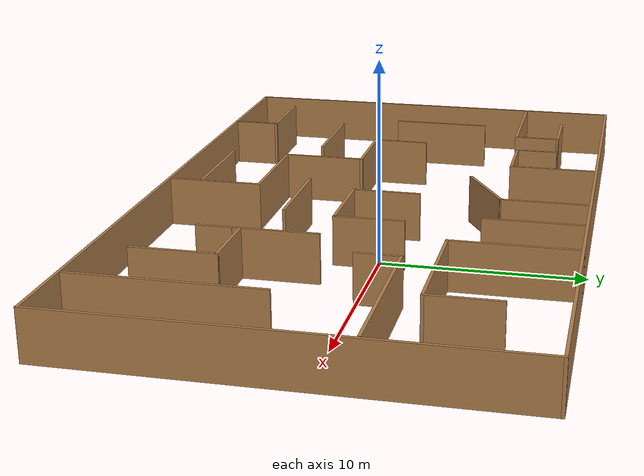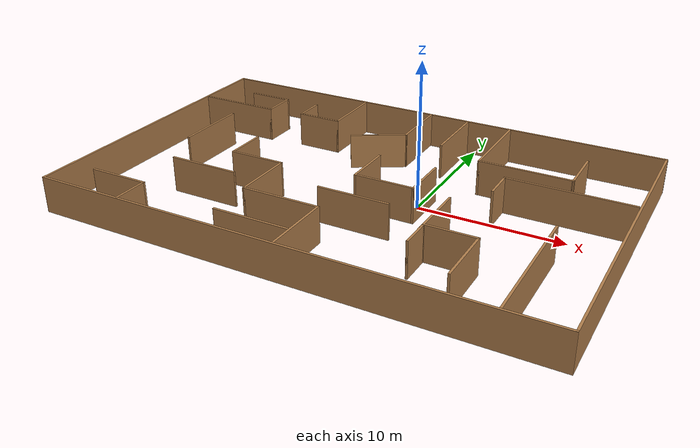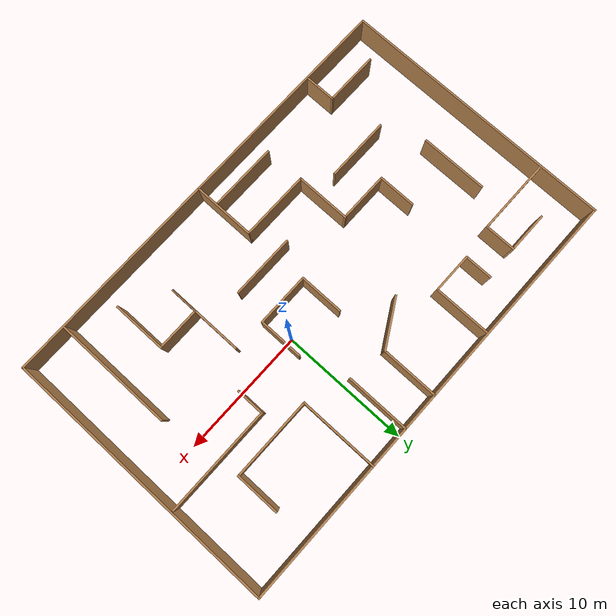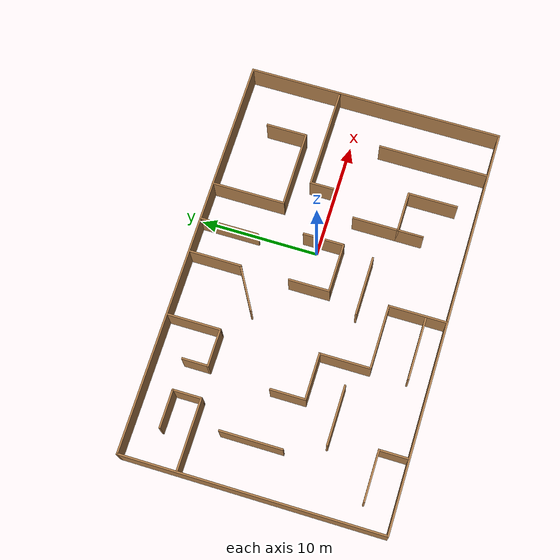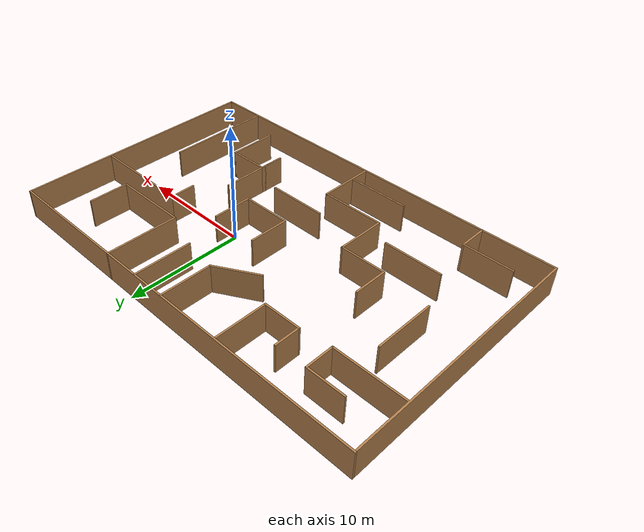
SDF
<?xml version='1.0'?>
<sdf version='1.7'>
  <model name='custom_maze'>
    <pose>-3.5651 -1.01333 0 0 -0 0</pose>
    <link name='Wall_16'>
      <collision name='Wall_16_Collision'>
        <geometry>
          <box>
            <size>21.75 0.15 2.5</size>
          </box>
        </geometry>
        <pose>0 0 1.25 0 -0 0</pose>
      </collision>
      <visual name='Wall_16_Visual'>
        <pose>0 0 1.25 0 -0 0</pose>
        <geometry>
          <box>
            <size>21.75 0.15 2.5</size>
          </box>
        </geometry>
        <material>
          <script>
            <uri>file://media/materials/scripts/gazebo.material</uri>
            <name>Gazebo/Wood</name>
          </script>
          <ambient>1 1 1 1</ambient>
        </material>
        <meta>
          <layer>0</layer>
        </meta>
      </visual>
      <pose>-17.175 -0.000588 0 0 -0 -1.5708</pose>
    </link>
    <link name='Wall_17'>
      <collision name='Wall_17_Collision'>
        <geometry>
          <box>
            <size>34.5 0.15 2.5</size>
          </box>
        </geometry>
        <pose>0 0 1.25 0 -0 0</pose>
      </collision>
      <visual name='Wall_17_Visual'>
        <pose>0 0 1.25 0 -0 0</pose>
        <geometry>
          <box>
            <size>34.5 0.15 2.5</size>
          </box>
        </geometry>
        <material>
          <script>
            <uri>file://media/materials/scripts/gazebo.material</uri>
            <name>Gazebo/Wood</name>
          </script>
          <ambient>1 1 1 1</ambient>
        </material>
        <meta>
          <layer>0</layer>
        </meta>
      </visual>
      <pose>-0 -10.8006 0 0 -0 0</pose>
    </link>
    <link name='Wall_18'>
      <collision name='Wall_18_Collision'>
        <geometry>
          <box>
            <size>21.75 0.15 2.5</size>
          </box>
        </geometry>
        <pose>0 0 1.25 0 -0 0</pose>
      </collision>
      <visual name='Wall_18_Visual'>
        <pose>0 0 1.25 0 -0 0</pose>
        <geometry>
          <box>
            <size>21.75 0.15 2.5</size>
          </box>
        </geometry>
        <material>
          <script>
            <uri>file://media/materials/scripts/gazebo.material</uri>
            <name>Gazebo/Wood</name>
          </script>
          <ambient>1 1 1 1</ambient>
        </material>
        <meta>
          <layer>0</layer>
        </meta>
      </visual>
      <pose>17.175 -0.000588 0 0 -0 1.5708</pose>
    </link>
    <link name='Wall_19'>
      <collision name='Wall_19_Collision'>
        <geometry>
          <box>
            <size>34.5 0.15 2.5</size>
          </box>
        </geometry>
        <pose>0 0 1.25 0 -0 0</pose>
      </collision>
      <visual name='Wall_19_Visual'>
        <pose>0 0 1.25 0 -0 0</pose>
        <geometry>
          <box>
            <size>34.5 0.15 2.5</size>
          </box>
        </geometry>
        <material>
          <script>
            <uri>file://media/materials/scripts/gazebo.material</uri>
            <name>Gazebo/Wood</name>
          </script>
          <ambient>1 1 1 1</ambient>
        </material>
        <meta>
          <layer>0</layer>
        </meta>
      </visual>
      <pose>-0 10.7994 0 0 -0 3.14159</pose>
    </link>
    <link name='Wall_21'>
      <collision name='Wall_21_Collision'>
        <geometry>
          <box>
            <size>6 0.15 2.5</size>
          </box>
        </geometry>
        <pose>0 0 1.25 0 -0 0</pose>
      </collision>
      <visual name='Wall_21_Visual'>
        <pose>0 0 1.25 0 -0 0</pose>
        <geometry>
          <box>
            <size>6 0.15 2.5</size>
          </box>
        </geometry>
        <material>
          <script>
            <uri>file://media/materials/scripts/gazebo.material</uri>
            <name>Gazebo/Wood</name>
          </script>
          <ambient>1 1 1 1</ambient>
        </material>
        <meta>
          <layer>0</layer>
        </meta>
      </visual>
      <pose>-14.1201 5.98637 0 0 -0 0</pose>
    </link>
    <link name='Wall_22'>
      <collision name='Wall_22_Collision'>
        <geometry>
          <box>
            <size>2.5 0.15 2.5</size>
          </box>
        </geometry>
        <pose>0 0 1.25 0 -0 0</pose>
      </collision>
      <visual name='Wall_22_Visual'>
        <pose>0 0 1.25 0 -0 0</pose>
        <geometry>
          <box>
            <size>2.5 0.15 2.5</size>
          </box>
        </geometry>
        <material>
          <script>
            <uri>file://media/materials/scripts/gazebo.material</uri>
            <name>Gazebo/Wood</name>
          </script>
          <ambient>1 1 1 1</ambient>
        </material>
        <meta>
          <layer>0</layer>
        </meta>
      </visual>
      <pose>-11.1951 7.16137 0 0 -0 1.5708</pose>
    </link>
    <link name='Wall_23'>
      <collision name='Wall_23_Collision'>
        <geometry>
          <box>
            <size>3.25 0.15 2.5</size>
          </box>
        </geometry>
        <pose>0 0 1.25 0 -0 0</pose>
      </collision>
      <visual name='Wall_23_Visual'>
        <pose>0 0 1.25 0 -0 0</pose>
        <geometry>
          <box>
            <size>3.25 0.15 2.5</size>
          </box>
        </geometry>
        <material>
          <script>
            <uri>file://media/materials/scripts/gazebo.material</uri>
            <name>Gazebo/Wood</name>
          </script>
          <ambient>1 1 1 1</ambient>
        </material>
        <meta>
          <layer>0</layer>
        </meta>
      </visual>
      <pose>-12.7451 8.33638 0 0 -0 3.14159</pose>
    </link>
    <link name='Wall_25'>
      <collision name='Wall_25_Collision'>
        <geometry>
          <box>
            <size>2.25 0.15 2.5</size>
          </box>
        </geometry>
        <pose>0 0 1.25 0 -0 0</pose>
      </collision>
      <visual name='Wall_25_Visual'>
        <pose>0 0 1.25 0 -0 0</pose>
        <geometry>
          <box>
            <size>2.25 0.15 2.5</size>
          </box>
        </geometry>
        <material>
          <script>
            <uri>file://media/materials/scripts/gazebo.material</uri>
            <name>Gazebo/Wood</name>
          </script>
          <ambient>1 1 1 1</ambient>
        </material>
        <meta>
          <layer>0</layer>
        </meta>
      </visual>
      <pose>-8.58987 7.36371 0 0 -0 -1.5708</pose>
    </link>
    <link name='Wall_26'>
      <collision name='Wall_26_Collision'>
        <geometry>
          <box>
            <size>3.25 0.15 2.5</size>
          </box>
        </geometry>
        <pose>0 0 1.25 0 -0 0</pose>
      </collision>
      <visual name='Wall_26_Visual'>
        <pose>0 0 1.25 0 -0 0</pose>
        <geometry>
          <box>
            <size>3.25 0.15 2.5</size>
          </box>
        </geometry>
        <material>
          <script>
            <uri>file://media/materials/scripts/gazebo.material</uri>
            <name>Gazebo/Wood</name>
          </script>
          <ambient>1 1 1 1</ambient>
        </material>
        <meta>
          <layer>0</layer>
        </meta>
      </visual>
      <pose>-7.03988 6.31371 0 0 -0 0</pose>
    </link>
    <link name='Wall_27'>
      <collision name='Wall_27_Collision'>
        <geometry>
          <box>
            <size>4.5 0.15 2.5</size>
          </box>
        </geometry>
        <pose>0 0 1.25 0 -0 0</pose>
      </collision>
      <visual name='Wall_27_Visual'>
        <pose>0 0 1.25 0 -0 0</pose>
        <geometry>
          <box>
            <size>4.5 0.15 2.5</size>
          </box>
        </geometry>
        <material>
          <script>
            <uri>file://media/materials/scripts/gazebo.material</uri>
            <name>Gazebo/Wood</name>
          </script>
          <ambient>1 1 1 1</ambient>
        </material>
        <meta>
          <layer>0</layer>
        </meta>
      </visual>
      <pose>-5.48987 8.48871 0 0 -0 1.5708</pose>
    </link>
    <link name='Wall_29'>
      <collision name='Wall_29_Collision'>
        <geometry>
          <box>
            <size>4.5 0.15 2.5</size>
          </box>
        </geometry>
        <pose>0 0 1.25 0 -0 0</pose>
      </collision>
      <visual name='Wall_29_Visual'>
        <pose>0 0 1.25 0 -0 0</pose>
        <geometry>
          <box>
            <size>4.5 0.15 2.5</size>
          </box>
        </geometry>
        <material>
          <script>
            <uri>file://media/materials/scripts/gazebo.material</uri>
            <name>Gazebo/Wood</name>
          </script>
          <ambient>1 1 1 1</ambient>
        </material>
        <meta>
          <layer>0</layer>
        </meta>
      </visual>
      <pose>0.067619 8.58513 0 0 -0 -1.5708</pose>
    </link>
    <link name='Wall_30'>
      <collision name='Wall_30_Collision'>
        <geometry>
          <box>
            <size>4 0.15 2.5</size>
          </box>
        </geometry>
        <pose>0 0 1.25 0 -0 0</pose>
      </collision>
      <visual name='Wall_30_Visual'>
        <pose>0 0 1.25 0 -0 0</pose>
        <geometry>
          <box>
            <size>4 0.15 2.5</size>
          </box>
        </geometry>
        <material>
          <script>
            <uri>file://media/materials/scripts/gazebo.material</uri>
            <name>Gazebo/Wood</name>
          </script>
          <ambient>1 1 1 1</ambient>
        </material>
        <meta>
          <layer>0</layer>
        </meta>
      </visual>
      <pose>-1.59948 5.44763 0 0 -0 -2.61799</pose>
    </link>
    <link name='Wall_33'>
      <collision name='Wall_33_Collision'>
        <geometry>
          <box>
            <size>5.25 0.15 2.5</size>
          </box>
        </geometry>
        <pose>0 0 1.25 0 -0 0</pose>
      </collision>
      <visual name='Wall_33_Visual'>
        <pose>0 0 1.25 0 -0 0</pose>
        <geometry>
          <box>
            <size>5.25 0.15 2.5</size>
          </box>
        </geometry>
        <material>
          <script>
            <uri>file://media/materials/scripts/gazebo.material</uri>
            <name>Gazebo/Wood</name>
          </script>
          <ambient>1 1 1 1</ambient>
        </material>
        <meta>
          <layer>0</layer>
        </meta>
      </visual>
      <pose>-13.2018 1.29483 0 0 -0 1.5708</pose>
    </link>
    <link name='Wall_36'>
      <collision name='Wall_36_Collision'>
        <geometry>
          <box>
            <size>2.5 0.15 2.5</size>
          </box>
        </geometry>
        <pose>0 0 1.25 0 -0 0</pose>
      </collision>
      <visual name='Wall_36_Visual'>
        <pose>0 0 1.25 0 -0 0</pose>
        <geometry>
          <box>
            <size>2.5 0.15 2.5</size>
          </box>
        </geometry>
        <material>
          <script>
            <uri>file://media/materials/scripts/gazebo.material</uri>
            <name>Gazebo/Wood</name>
          </script>
          <ambient>1 1 1 1</ambient>
        </material>
        <meta>
          <layer>0</layer>
        </meta>
      </visual>
      <pose>-11.0981 -9.54678 0 0 -0 1.5708</pose>
    </link>
    <link name='Wall_37'>
      <collision name='Wall_37_Collision'>
        <geometry>
          <box>
            <size>4.25 0.15 2.5</size>
          </box>
        </geometry>
        <pose>0 0 1.25 0 -0 0</pose>
      </collision>
      <visual name='Wall_37_Visual'>
        <pose>0 0 1.25 0 -0 0</pose>
        <geometry>
          <box>
            <size>4.25 0.15 2.5</size>
          </box>
        </geometry>
        <material>
          <script>
            <uri>file://media/materials/scripts/gazebo.material</uri>
            <name>Gazebo/Wood</name>
          </script>
          <ambient>1 1 1 1</ambient>
        </material>
        <meta>
          <layer>0</layer>
        </meta>
      </visual>
      <pose>-13.1481 -8.37178 0 0 -0 3.14159</pose>
    </link>
    <link name='Wall_39'>
      <collision name='Wall_39_Collision'>
        <geometry>
          <box>
            <size>5 0.15 2.5</size>
          </box>
        </geometry>
        <pose>0 0 1.25 0 -0 0</pose>
      </collision>
      <visual name='Wall_39_Visual'>
        <pose>0 0 1.25 0 -0 0</pose>
        <geometry>
          <box>
            <size>5 0.15 2.5</size>
          </box>
        </geometry>
        <material>
          <script>
            <uri>file://media/materials/scripts/gazebo.material</uri>
            <name>Gazebo/Wood</name>
          </script>
          <ambient>1 1 1 1</ambient>
        </material>
        <meta>
          <layer>0</layer>
        </meta>
      </visual>
      <pose>-9.44178 -4.45116 0 0 -0 0</pose>
    </link>
    <link name='Wall_44'>
      <collision name='Wall_44_Collision'>
        <geometry>
          <box>
            <size>3 0.15 2.5</size>
          </box>
        </geometry>
        <pose>0 0 1.25 0 -0 0</pose>
      </collision>
      <visual name='Wall_44_Visual'>
        <pose>0 0 1.25 0 -0 0</pose>
        <geometry>
          <box>
            <size>3 0.15 2.5</size>
          </box>
        </geometry>
        <material>
          <script>
            <uri>file://media/materials/scripts/gazebo.material</uri>
            <name>Gazebo/Wood</name>
          </script>
          <ambient>1 1 1 1</ambient>
        </material>
        <meta>
          <layer>0</layer>
        </meta>
      </visual>
      <pose>-8.95397 -0.374206 0 0 -0 -1.5708</pose>
    </link>
    <link name='Wall_45'>
      <collision name='Wall_45_Collision'>
        <geometry>
          <box>
            <size>4 0.15 2.5</size>
          </box>
        </geometry>
        <pose>0 0 1.25 0 -0 0</pose>
      </collision>
      <visual name='Wall_45_Visual'>
        <pose>0 0 1.25 0 -0 0</pose>
        <geometry>
          <box>
            <size>4 0.15 2.5</size>
          </box>
        </geometry>
        <material>
          <script>
            <uri>file://media/materials/scripts/gazebo.material</uri>
            <name>Gazebo/Wood</name>
          </script>
          <ambient>1 1 1 1</ambient>
        </material>
        <meta>
          <layer>0</layer>
        </meta>
      </visual>
      <pose>-7.02897 -1.79921 0 0 -0 0</pose>
    </link>
    <link name='Wall_46'>
      <collision name='Wall_46_Collision'>
        <geometry>
          <box>
            <size>4.32702 0.15 2.5</size>
          </box>
        </geometry>
        <pose>0 0 1.25 0 -0 0</pose>
      </collision>
      <visual name='Wall_46_Visual'>
        <pose>0 0 1.25 0 -0 0</pose>
        <geometry>
          <box>
            <size>4.32702 0.15 2.5</size>
          </box>
        </geometry>
        <material>
          <script>
            <uri>file://media/materials/scripts/gazebo.material</uri>
            <name>Gazebo/Wood</name>
          </script>
          <ambient>1 1 1 1</ambient>
        </material>
        <meta>
          <layer>0</layer>
        </meta>
      </visual>
      <pose>-5.10398 -3.88771 0 0 -0 -1.5708</pose>
    </link>
    <link name='Wall_48'>
      <collision name='Wall_48_Collision'>
        <geometry>
          <box>
            <size>5.5 0.15 2.5</size>
          </box>
        </geometry>
        <pose>0 0 1.25 0 -0 0</pose>
      </collision>
      <visual name='Wall_48_Visual'>
        <pose>0 0 1.25 0 -0 0</pose>
        <geometry>
          <box>
            <size>5.5 0.15 2.5</size>
          </box>
        </geometry>
        <material>
          <script>
            <uri>file://media/materials/scripts/gazebo.material</uri>
            <name>Gazebo/Wood</name>
          </script>
          <ambient>1 1 1 1</ambient>
        </material>
        <meta>
          <layer>0</layer>
        </meta>
      </visual>
      <pose>-2.42897 -5.97622 0 0 -0 0</pose>
    </link>
    <link name='Wall_49'>
      <collision name='Wall_49_Collision'>
        <geometry>
          <box>
            <size>4.92298 0.15 2.5</size>
          </box>
        </geometry>
        <pose>0 0 1.25 0 -0 0</pose>
      </collision>
      <visual name='Wall_49_Visual'>
        <pose>0 0 1.25 0 -0 0</pose>
        <geometry>
          <box>
            <size>4.92298 0.15 2.5</size>
          </box>
        </geometry>
        <material>
          <script>
            <uri>file://media/materials/scripts/gazebo.material</uri>
            <name>Gazebo/Wood</name>
          </script>
          <ambient>1 1 1 1</ambient>
        </material>
        <meta>
          <layer>0</layer>
        </meta>
      </visual>
      <pose>0.246025 -8.36271 0 0 -0 -1.5708</pose>
    </link>
    <link name='Wall_51'>
      <collision name='Wall_51_Collision'>
        <geometry>
          <box>
            <size>5.25 0.15 2.5</size>
          </box>
        </geometry>
        <pose>0 0 1.25 0 -0 0</pose>
      </collision>
      <visual name='Wall_51_Visual'>
        <pose>0 0 1.25 0 -0 0</pose>
        <geometry>
          <box>
            <size>5.25 0.15 2.5</size>
          </box>
        </geometry>
        <material>
          <script>
            <uri>file://media/materials/scripts/gazebo.material</uri>
            <name>Gazebo/Wood</name>
          </script>
          <ambient>1 1 1 1</ambient>
        </material>
        <meta>
          <layer>0</layer>
        </meta>
      </visual>
      <pose>-2.47978 -9.0631 0 0 -0 0</pose>
    </link>
    <link name='Wall_53'>
      <collision name='Wall_53_Collision'>
        <geometry>
          <box>
            <size>6 0.15 2.5</size>
          </box>
        </geometry>
        <pose>0 0 1.25 0 -0 0</pose>
      </collision>
      <visual name='Wall_53_Visual'>
        <pose>0 0 1.25 0 -0 0</pose>
        <geometry>
          <box>
            <size>6 0.15 2.5</size>
          </box>
        </geometry>
        <material>
          <script>
            <uri>file://media/materials/scripts/gazebo.material</uri>
            <name>Gazebo/Wood</name>
          </script>
          <ambient>1 1 1 1</ambient>
        </material>
        <meta>
          <layer>0</layer>
        </meta>
      </visual>
      <pose>6.66188 -4.09926 0 0 -0 -1.5708</pose>
    </link>
    <link name='Wall_54'>
      <collision name='Wall_54_Collision'>
        <geometry>
          <box>
            <size>2.25 0.15 2.5</size>
          </box>
        </geometry>
        <pose>0 0 1.25 0 -0 0</pose>
      </collision>
      <visual name='Wall_54_Visual'>
        <pose>0 0 1.25 0 -0 0</pose>
        <geometry>
          <box>
            <size>2.25 0.15 2.5</size>
          </box>
        </geometry>
        <material>
          <script>
            <uri>file://media/materials/scripts/gazebo.material</uri>
            <name>Gazebo/Wood</name>
          </script>
          <ambient>1 1 1 1</ambient>
        </material>
        <meta>
          <layer>0</layer>
        </meta>
      </visual>
      <pose>6.66188 -5.97426 0 0 -0 1.5708</pose>
    </link>
    <link name='Wall_55'>
      <collision name='Wall_55_Collision'>
        <geometry>
          <box>
            <size>3.5 0.15 2.5</size>
          </box>
        </geometry>
        <pose>0 0 1.25 0 -0 0</pose>
      </collision>
      <visual name='Wall_55_Visual'>
        <pose>0 0 1.25 0 -0 0</pose>
        <geometry>
          <box>
            <size>3.5 0.15 2.5</size>
          </box>
        </geometry>
        <material>
          <script>
            <uri>file://media/materials/scripts/gazebo.material</uri>
            <name>Gazebo/Wood</name>
          </script>
          <ambient>1 1 1 1</ambient>
        </material>
        <meta>
          <layer>0</layer>
        </meta>
      </visual>
      <pose>8.33688 -4.92426 0 0 -0 0</pose>
    </link>
    <link name='Wall_56'>
      <collision name='Wall_56_Collision'>
        <geometry>
          <box>
            <size>4.25 0.15 2.5</size>
          </box>
        </geometry>
        <pose>0 0 1.25 0 -0 0</pose>
      </collision>
      <visual name='Wall_56_Visual'>
        <pose>0 0 1.25 0 -0 0</pose>
        <geometry>
          <box>
            <size>4.25 0.15 2.5</size>
          </box>
        </geometry>
        <material>
          <script>
            <uri>file://media/materials/scripts/gazebo.material</uri>
            <name>Gazebo/Wood</name>
          </script>
          <ambient>1 1 1 1</ambient>
        </material>
        <meta>
          <layer>0</layer>
        </meta>
      </visual>
      <pose>10.0119 -6.97426 0 0 -0 -1.5708</pose>
    </link>
    <link name='Wall_58'>
      <collision name='Wall_58_Collision'>
        <geometry>
          <box>
            <size>9.25 0.15 2.5</size>
          </box>
        </geometry>
        <pose>0 0 1.25 0 -0 0</pose>
      </collision>
      <visual name='Wall_58_Visual'>
        <pose>0 0 1.25 0 -0 0</pose>
        <geometry>
          <box>
            <size>9.25 0.15 2.5</size>
          </box>
        </geometry>
        <material>
          <script>
            <uri>file://media/materials/scripts/gazebo.material</uri>
            <name>Gazebo/Wood</name>
          </script>
          <ambient>1 1 1 1</ambient>
        </material>
        <meta>
          <layer>0</layer>
        </meta>
      </visual>
      <pose>13.418 -6.09087 0 0 -0 1.5708</pose>
    </link>
    <link name='Wall_60'>
      <collision name='Wall_60_Collision'>
        <geometry>
          <box>
            <size>5 0.15 2.5</size>
          </box>
        </geometry>
        <pose>0 0 1.25 0 -0 0</pose>
      </collision>
      <visual name='Wall_60_Visual'>
        <pose>0 0 1.25 0 -0 0</pose>
        <geometry>
          <box>
            <size>5 0.15 2.5</size>
          </box>
        </geometry>
        <material>
          <script>
            <uri>file://media/materials/scripts/gazebo.material</uri>
            <name>Gazebo/Wood</name>
          </script>
          <ambient>1 1 1 1</ambient>
        </material>
        <meta>
          <layer>0</layer>
        </meta>
      </visual>
      <pose>1.31941 -3.64205 0 0 -0 0</pose>
    </link>
    <link name='Wall_62'>
      <collision name='Wall_62_Collision'>
        <geometry>
          <box>
            <size>6.25 0.15 2.5</size>
          </box>
        </geometry>
        <pose>0 0 1.25 0 -0 0</pose>
      </collision>
      <visual name='Wall_62_Visual'>
        <pose>0 0 1.25 0 -0 0</pose>
        <geometry>
          <box>
            <size>6.25 0.15 2.5</size>
          </box>
        </geometry>
        <material>
          <script>
            <uri>file://media/materials/scripts/gazebo.material</uri>
            <name>Gazebo/Wood</name>
          </script>
          <ambient>1 1 1 1</ambient>
        </material>
        <meta>
          <layer>0</layer>
        </meta>
      </visual>
      <pose>6.25732 7.75059 0 0 -0 -1.5708</pose>
    </link>
    <link name='Wall_63'>
      <collision name='Wall_63_Collision'>
        <geometry>
          <box>
            <size>6.5 0.15 2.5</size>
          </box>
        </geometry>
        <pose>0 0 1.25 0 -0 0</pose>
      </collision>
      <visual name='Wall_63_Visual'>
        <pose>0 0 1.25 0 -0 0</pose>
        <geometry>
          <box>
            <size>6.5 0.15 2.5</size>
          </box>
        </geometry>
        <material>
          <script>
            <uri>file://media/materials/scripts/gazebo.material</uri>
            <name>Gazebo/Wood</name>
          </script>
          <ambient>1 1 1 1</ambient>
        </material>
        <meta>
          <layer>0</layer>
        </meta>
      </visual>
      <pose>9.43232 4.70059 0 0 -0 0</pose>
    </link>
    <link name='Wall_64'>
      <collision name='Wall_64_Collision'>
        <geometry>
          <box>
            <size>3.5 0.15 2.5</size>
          </box>
        </geometry>
        <pose>0 0 1.25 0 -0 0</pose>
      </collision>
      <visual name='Wall_64_Visual'>
        <pose>0 0 1.25 0 -0 0</pose>
        <geometry>
          <box>
            <size>3.5 0.15 2.5</size>
          </box>
        </geometry>
        <material>
          <script>
            <uri>file://media/materials/scripts/gazebo.material</uri>
            <name>Gazebo/Wood</name>
          </script>
          <ambient>1 1 1 1</ambient>
        </material>
        <meta>
          <layer>0</layer>
        </meta>
      </visual>
      <pose>12.6073 6.37559 0 0 -0 1.5708</pose>
    </link>
    <link name='Wall_66'>
      <collision name='Wall_66_Collision'>
        <geometry>
          <box>
            <size>5 0.15 2.5</size>
          </box>
        </geometry>
        <pose>0 0 1.25 0 -0 0</pose>
      </collision>
      <visual name='Wall_66_Visual'>
        <pose>0 0 1.25 0 -0 0</pose>
        <geometry>
          <box>
            <size>5 0.15 2.5</size>
          </box>
        </geometry>
        <material>
          <script>
            <uri>file://media/materials/scripts/gazebo.material</uri>
            <name>Gazebo/Wood</name>
          </script>
          <ambient>1 1 1 1</ambient>
        </material>
        <meta>
          <layer>0</layer>
        </meta>
      </visual>
      <pose>3.02088 8.33046 0 0 -0 1.5708</pose>
    </link>
    <link name='Wall_68'>
      <collision name='Wall_68_Collision'>
        <geometry>
          <box>
            <size>8.5 0.15 2.5</size>
          </box>
        </geometry>
        <pose>0 0 1.25 0 -0 0</pose>
      </collision>
      <visual name='Wall_68_Visual'>
        <pose>0 0 1.25 0 -0 0</pose>
        <geometry>
          <box>
            <size>8.5 0.15 2.5</size>
          </box>
        </geometry>
        <material>
          <script>
            <uri>file://media/materials/scripts/gazebo.material</uri>
            <name>Gazebo/Wood</name>
          </script>
          <ambient>1 1 1 1</ambient>
        </material>
        <meta>
          <layer>0</layer>
        </meta>
      </visual>
      <pose>12.8031 3.07357 0 0 -0 3.14159</pose>
    </link>
    <link name='Wall_69'>
      <collision name='Wall_69_Collision'>
        <geometry>
          <box>
            <size>2.25 0.15 2.5</size>
          </box>
        </geometry>
        <pose>0 0 1.25 0 -0 0</pose>
      </collision>
      <visual name='Wall_69_Visual'>
        <pose>0 0 1.25 0 -0 0</pose>
        <geometry>
          <box>
            <size>2.25 0.15 2.5</size>
          </box>
        </geometry>
        <material>
          <script>
            <uri>file://media/materials/scripts/gazebo.material</uri>
            <name>Gazebo/Wood</name>
          </script>
          <ambient>1 1 1 1</ambient>
        </material>
        <meta>
          <layer>0</layer>
        </meta>
      </visual>
      <pose>8.62805 2.02357 0 0 -0 -1.5708</pose>
    </link>
    <link name='Wall_71'>
      <collision name='Wall_71_Collision'>
        <geometry>
          <box>
            <size>3.5 0.15 2.5</size>
          </box>
        </geometry>
        <pose>0 0 1.25 0 -0 0</pose>
      </collision>
      <visual name='Wall_71_Visual'>
        <pose>0 0 1.25 0 -0 0</pose>
        <geometry>
          <box>
            <size>3.5 0.15 2.5</size>
          </box>
        </geometry>
        <material>
          <script>
            <uri>file://media/materials/scripts/gazebo.material</uri>
            <name>Gazebo/Wood</name>
          </script>
          <ambient>1 1 1 1</ambient>
        </material>
        <meta>
          <layer>0</layer>
        </meta>
      </visual>
      <pose>0.067619 0.629917 0 0 -0 -1.5708</pose>
    </link>
    <link name='Wall_72'>
      <collision name='Wall_72_Collision'>
        <geometry>
          <box>
            <size>4.25 0.15 2.5</size>
          </box>
        </geometry>
        <pose>0 0 1.25 0 -0 0</pose>
      </collision>
      <visual name='Wall_72_Visual'>
        <pose>0 0 1.25 0 -0 0</pose>
        <geometry>
          <box>
            <size>4.25 0.15 2.5</size>
          </box>
        </geometry>
        <material>
          <script>
            <uri>file://media/materials/scripts/gazebo.material</uri>
            <name>Gazebo/Wood</name>
          </script>
          <ambient>1 1 1 1</ambient>
        </material>
        <meta>
          <layer>0</layer>
        </meta>
      </visual>
      <pose>2.11762 -1.04508 0 0 -0 0</pose>
    </link>
    <link name='Wall_73'>
      <collision name='Wall_73_Collision'>
        <geometry>
          <box>
            <size>3.5 0.15 2.5</size>
          </box>
        </geometry>
        <pose>0 0 1.25 0 -0 0</pose>
      </collision>
      <visual name='Wall_73_Visual'>
        <pose>0 0 1.25 0 -0 0</pose>
        <geometry>
          <box>
            <size>3.5 0.15 2.5</size>
          </box>
        </geometry>
        <material>
          <script>
            <uri>file://media/materials/scripts/gazebo.material</uri>
            <name>Gazebo/Wood</name>
          </script>
          <ambient>1 1 1 1</ambient>
        </material>
        <meta>
          <layer>0</layer>
        </meta>
      </visual>
      <pose>4.16762 0.629917 0 0 -0 1.5708</pose>
    </link>
    <static>1</static>
  </model>
</sdf>
